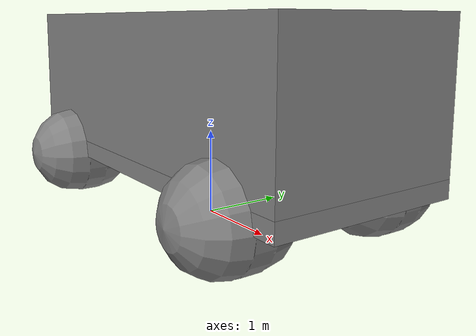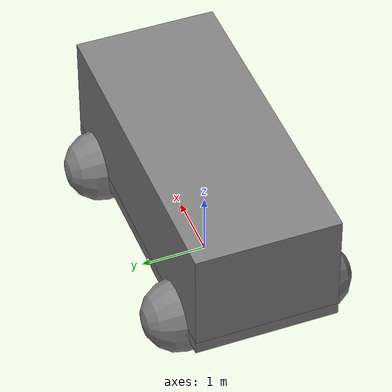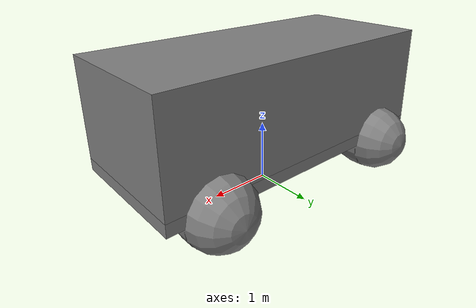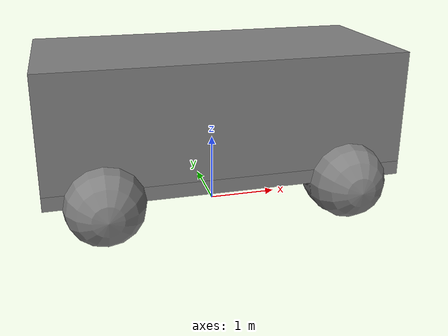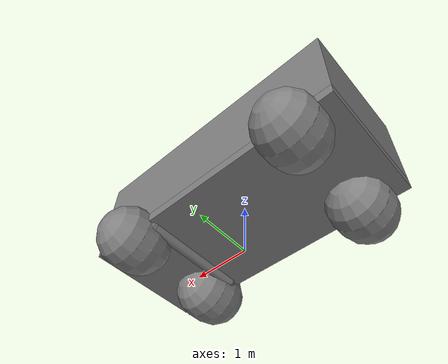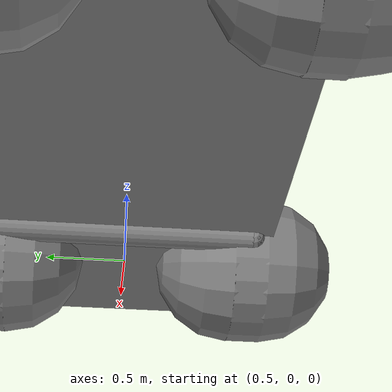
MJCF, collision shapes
<?xml version="1.0" ?>
<mujoco>
    <compiler angle="radian"/>
	<asset>
        <mesh name="hummer_body" content_type="model/obj" file="usd:body.usdc" scale="1 1 1"/>
        <mesh name="hummer_wheel" content_type="model/obj" file="usd:wheel.usdc" scale="1 1 1"/>
    </asset>

    <default>
        <default class="visual">
            <geom contype="0" conaffinity="0" group="1" type="mesh"/>
        </default>
        <default class="collision">
            <geom contype="1" conaffinity="1" group="3"/>
        </default>
        <default class="wheel_joint">
            <joint type="hinge" axis="1 0 0" damping="20"/>
        </default>
        <default class="wheel_geom">
            <geom contype="1" conaffinity="1" group="3" type="capsule"
            size="0.55 0.1" pos="0 0 0" fromto="-0.12 0 0 0.12 0 0"  density="100"
            friction="1.5 0.5 0.1" priority="1" solref="0.002 2" solimp="0.8 0.3 0.01 0.5 2" margin="0.001" gap="0.0001"/>
        </default>
        <default class="spring_joint">
            <joint type="slide" pos="0 0 0" axis="0 0 1" springref="0" range="-0.05 0.05" springdamper="100000 20000"/>
        </default>
        <default class="spring_geom">
            <geom contype="1" conaffinity="1" group="3" type="capsule"
            size="0.1 0.5" pos="0 0 0" fromto="0 0 -0.4 0 0 0.4" density="1000"/>
        </default>

        <default class="steering_joint">
            <joint type="ball" pos="0 0 0" />
        </default>
        <default class="steering_geom">
            <geom contype="1" conaffinity="1" group="3" type="capsule"
            size="0.1 0.5" pos="0 0 0" fromto=" 0 -1.9 0  0 0 0" density="1000"/>
        </default>

        <default class="steering_connect_geom">
            <geom contype="1" conaffinity="1" group="3" type="capsule"
            size="0.1 0.3" pos="0 0 0" fromto="-0.5 0 0 0 0 0" density="1000"/>
        </default>

        <default class="steering_turn_joint">
            <joint type="hinge" pos="0 0 0" axis="0 0 1" springref="0" range="-0.5 0.5" springdamper="1 1"/>
        </default>
        <default class="steering_turn_geom">
            <geom contype="1" conaffinity="1" group="3" type="sphere"
            size="0.1 0.3" pos="0 0 0" density="1000"/>
        </default>
    </default>

	<worldbody>
        <body name="base_link">
            <freejoint name="base_joint"/>
            <body name="hummer_body" pos="0 0 0" euler="0 0 -1.5708">
                <geom class="visual" mesh="hummer_body"/>
            </body>
            <geom class="collision" name="chassis_collision" type="box" pos="0 0 0.7" size="2.5 1.1 0.1" density="1000"/>
            <geom class="collision" name="cockpit_collision" type="box" pos="0 0 1.6" size="2.5 1.1 0.8" density="60"/>

            <body name="spring_fl" pos="1.7 0.95 0.6">
                <joint class="spring_joint" name="spring_1_joint"/>
                <geom name="spring_1_collision" class="spring_geom"/>

                <body name="steering_turn_fl" pos="0 0 0">
                    <joint class="steering_turn_joint" name="steering_turn_fl_joint"/>
                    <geom class="steering_turn_geom" name="steering_turn_fl_geom"/>
                    <geom class="steering_connect_geom" name="steering_connect_fl_geom"/>

                    <body name="steering_link" pos="-0.5 0 0">
                        <joint class="steering_joint" name="steering_joint"/>
                        <geom class="steering_geom" name="steering_geom"/>
                    </body>

                    <body name="wheel_fl" pos="0 0 0"  euler="0 0 -1.5708">
                        <joint class="wheel_joint" name="wheel_1_joint"/>
                        <geom class="visual" mesh="hummer_wheel"/>
                        <geom name="wheel_1_collision" class="wheel_geom"/>
                    </body>
                </body>
            </body>

            <body name="spring_fr" pos="1.7 -0.95 0.6">
                <joint class="spring_joint" name="spring_2_joint"/>
                <geom name="spring_2_collision" class="spring_geom"/>

                <body name="steering_turn_fr" pos="0 0 0">
                    <joint class="steering_turn_joint" name="steering_turn_fr_joint"/>
                    <geom class="steering_turn_geom" name="steering_turn_fr_geom"/>
                    <geom class="steering_connect_geom" name="steering_connect_fr_geom"/>

                    <body name="wheel_fr" pos="0 0 0"  euler="0 0 1.5708">
                        <joint class="wheel_joint" name="wheel_2_joint"/>
                        <geom class="visual" mesh="hummer_wheel"/>
                        <geom name="wheel_2_collision" class="wheel_geom"/>
                    </body>
                </body>
            </body>

            <body name="spring_rl" pos="-1.7 0.95 0.6">
                <joint class="spring_joint" name="spring_3_joint"/>
                <geom name="spring_3_collision" class="spring_geom"/>
                <body name="wheel_rl" pos="0 0 0"  euler="0 0 -1.5708">
                    <joint class="wheel_joint" name="wheel_3_joint"/>
                    <geom class="visual" mesh="hummer_wheel"/>
                    <geom name="wheel_3_collision" class="wheel_geom"/>
                </body>
            </body>

            <body name="spring_rr" pos="-1.7 -0.95 0.6">
                <joint class="spring_joint" name="spring_4_joint"/>
                <geom name="spring_4_collision" class="spring_geom"/>
                <body name="wheel_rr" pos="0 0 0"  euler="0 0 1.5708">
                    <joint class="wheel_joint" name="wheel_4_joint"/>
                    <geom class="visual" mesh="hummer_wheel"/>
                    <geom name="wheel_4_collision" class="wheel_geom"/>
                </body>
            </body>

        </body>
	</worldbody>

    <contact>
        <exclude name="ex_base_link_wheel_fl" body1="base_link" body2="wheel_fl"/>
        <exclude name="ex_base_link_wheel_fr" body1="base_link" body2="wheel_fr"/>
        <exclude name="ex_base_link_wheel_rl" body1="base_link" body2="wheel_rl"/>
        <exclude name="ex_base_link_wheel_rr" body1="base_link" body2="wheel_rr"/>
        <exclude name="ex_base_link_steering" body1="steering_link" body2="base_link"/>
        <exclude name="ex_base_link_steering_turn_fl" body1="steering_turn_fl" body2="base_link"/>
        <exclude name="ex_base_link_steering_turn_fr" body1="steering_turn_fr" body2="base_link"/>

        <exclude name="ex_wheel_fl_spring_fl" body1="wheel_fl" body2="spring_fl"/>
        <exclude name="ex_wheel_fl_steering" body1="wheel_fl" body2="steering_link"/>

        <exclude name="ex_wheel_fr_spring_fr" body1="wheel_fr" body2="spring_fr"/>
        <exclude name="ex_wheel_fr_steering" body1="wheel_fr" body2="steering_link"/>

        <exclude name="ex_steering_steering_turn_fl" body1="steering_turn_fl" body2="steering_link"/>
        <exclude name="ex_steering_steering_turn_fr" body1="steering_turn_fr" body2="steering_link"/>

    </contact>

    <actuator>
        <motor name="m_wheel_fl" joint="wheel_1_joint" ctrlrange="-1500 1500" ctrllimited="true" gear="1"/>
        <motor name="m_wheel_fr" joint="wheel_2_joint" ctrlrange="-1500 1500" ctrllimited="true" gear="1"/>
        <motor name="m_wheel_rl" joint="wheel_3_joint" ctrlrange="-1500 1500" ctrllimited="true" gear="1"/>
        <motor name="m_wheel_rr" joint="wheel_4_joint" ctrlrange="-1500 1500" ctrllimited="true" gear="1"/>

        <motor name="m_spring_fl" joint="spring_1_joint" ctrlrange="-1000 1000" ctrllimited="true" gear="10"/>
        <motor name="m_spring_fr" joint="spring_2_joint" ctrlrange="-1000 1000" ctrllimited="true" gear="10"/>
        <motor name="m_spring_rl" joint="spring_3_joint" ctrlrange="-1000 1000" ctrllimited="true" gear="10"/>
        <motor name="m_spring_rr" joint="spring_4_joint" ctrlrange="-1000 1000" ctrllimited="true" gear="10"/>

        <position name="p_steering_turn_fl" joint="steering_turn_fl_joint" ctrlrange="-0.5 0.5" ctrllimited="true" forcerange="-5000 5000" kp="5000" kv="500"/>
        <position name="p_steering_turn_fr" joint="steering_turn_fr_joint" ctrlrange="-0.5 0.5" ctrllimited="true" forcerange="-5000 5000" kp="5000" kv="500"/>
    </actuator>

    <equality>
        <connect anchor="-0.5 0 0" body1="steering_turn_fl" body2="steering_link"/>
        <connect anchor="-0.5 0 0" body1="steering_turn_fr" body2="steering_link"/>
    </equality>
</mujoco>
